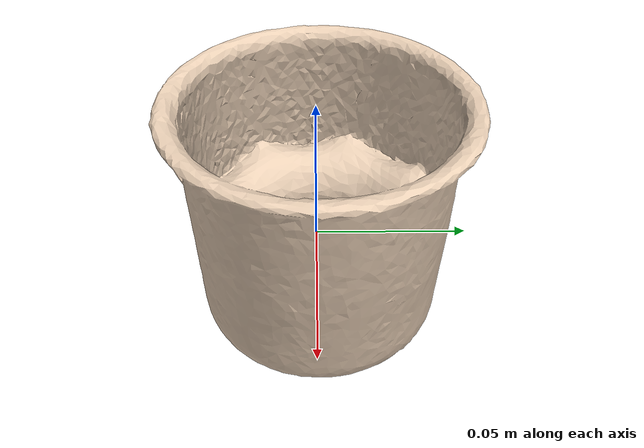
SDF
<?xml version="1.0"?>
<sdf version="1.7">
  <model name="mug">
    <link name="mug_link">
      <inertial>
        <mass>0.25</mass>
        <pose>0 0 0 0 0 0</pose>
        <inertia>
          <ixx>0.0003</ixx>
          <ixy>0</ixy>
          <ixz>0</ixz>
          <iyy>0.0003</iyy>
          <iyz>0</iyz>
          <izz>0.0003</izz>
        </inertia>
      </inertial>

      <visual name="visual">
        <geometry>
          <mesh>
            <uri>textured.obj</uri>
            <scale>1 1 1</scale>
          </mesh>
        </geometry>
        <material>
          <diffuse>0.9 0.8 0.7 1.0</diffuse>
          <ambient>0.9 0.8 0.7 1.0</ambient>
          <specular>0.3 0.3 0.3 1.0</specular>
        </material>
      </visual>

      <collision name="collision">
        <geometry>
          <mesh>
            <uri>textured.obj</uri>
            <scale>1 1 1</scale>
          </mesh>
        </geometry>
        <surface>
          <friction>
            <ode>
              <mu>0.7</mu>
              <mu2>0.7</mu2>
            </ode>
          </friction>
        </surface>
      </collision>
    </link>
  </model>
</sdf>
